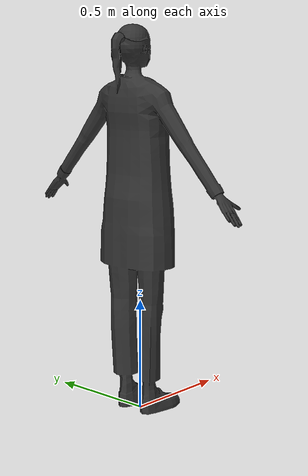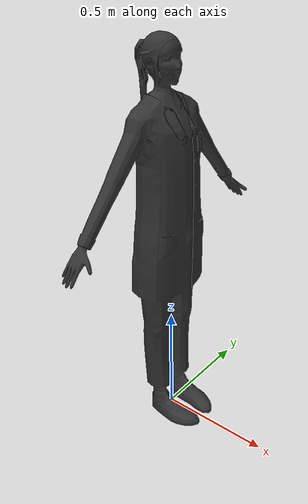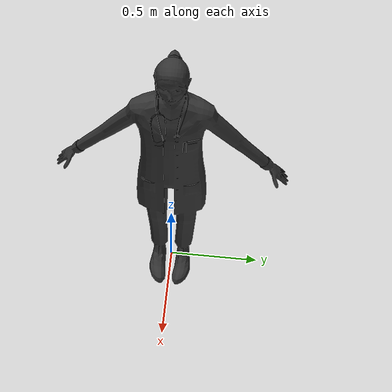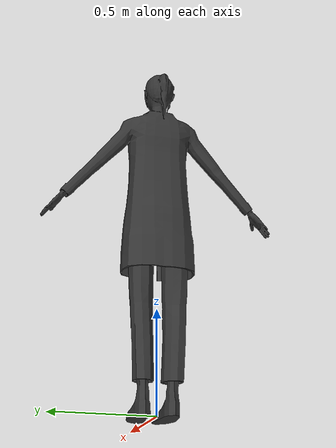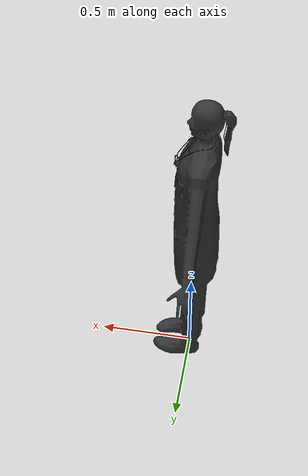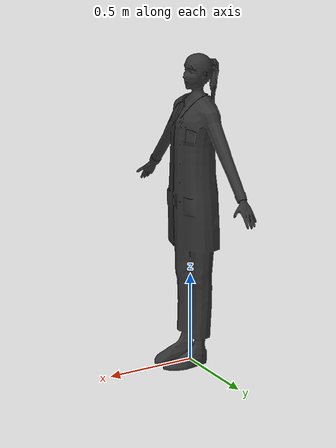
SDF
<sdf version="1.6">

  <model name="DoctorFemaleWalk">
  	<static>0</static>
    <link name="link">
		<inertial>
			<mass>0.2</mass>
		</inertial>
      <visual name="visual">
        <geometry>
          <mesh>
            <uri>model://DoctorFemaleWalk/meshes/DoctorFemaleWalk.dae</uri>
          </mesh>
        </geometry>
	<material>
		<ambient>0.2 0.2 0.2  1</ambient>
 	</material>
      </visual>
    </link>
  </model>
</sdf>
